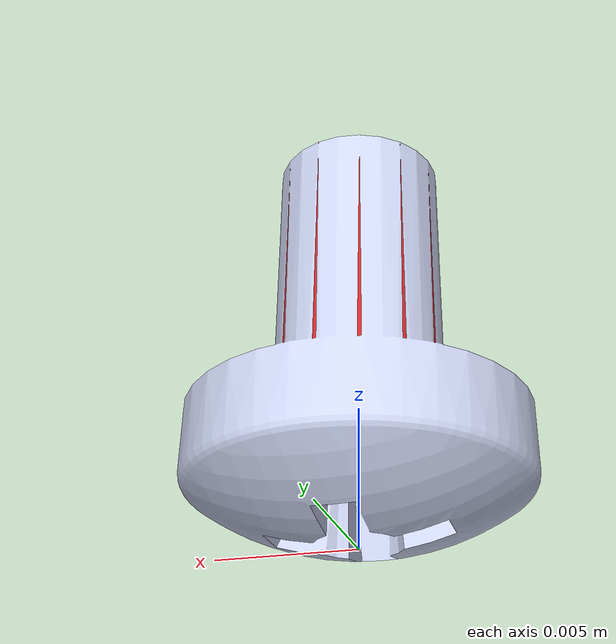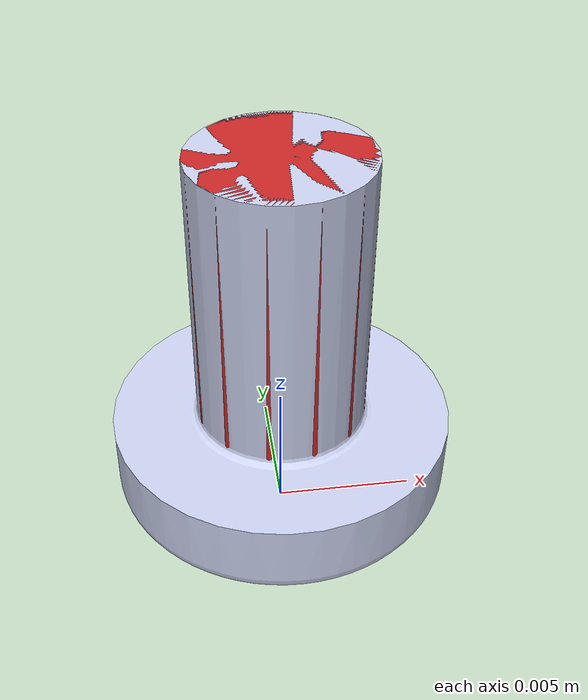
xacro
<?xml version="1.0"?>
<robot name="122925" xmlns:xacro="http://www.ros.org/wiki/xacro">
	<xacro:include filename="$(find object_description)/chair_urdf/122925.SLDPRT.urdf"/>
	<xacro:include filename="$(find object_description)/chair_xacro_re/for_assemble_macro.xacro"/>

	<xacro:property name="x_offset" value="0.0"/>
	<xacro:property name="y_offset" value="0.0"/>
	<xacro:property name="z_offset" value="0.0"/>

	<xacro:shaft_definition link_name="122925 shaft simplex 122620-1 1"
							length="0.01"
							radius="0.003"
							x="${0.0 + x_offset}" y="${0.0 + y_offset}" z="${0.0096 + z_offset}"
							rx="0" ry="0" rz="0"
							parent="122925.SLDPRT"/>

</robot>

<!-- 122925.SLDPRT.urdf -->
<robot
  name="122925.SLDPRT">
  <link
    name="122925.SLDPRT">
    <inertial>
      <origin
        xyz="-6.3758E-19 -2.3764E-19 0.00578"
        rpy="0 -1.5707963267949 0" />
      <mass
        value="0.00065266" />
      <inertia
        ixx="7.8857E-09"
        ixy="1.1443E-19"
        ixz="-1.1443E-19"
        iyy="1.4006E-08"
        iyz="-7.19799999999999E-14"
        izz="1.4007E-08" />
    </inertial>
    <visual>
      <origin
        xyz="0 0 0"
        rpy="0 -1.5707963267949 0" />
      <geometry>
        <mesh
          filename="package://object_description/chair_meshes/122925.SLDPRT.STL" />
      </geometry>
      <material
        name="">
        <color
          rgba="0.79216 0.81961 0.93333 1" />
        <texture
          filename="package://object_description/textures/" />
      </material>
    </visual>
    <collision>
      <origin
        xyz="0 0 0"
        rpy="0 -1.5707963267949 0" />
      <geometry>
        <mesh
          filename="package://object_description/chair_meshes/122925.SLDPRT.STL" />
      </geometry>
    </collision>
  </link>
	<gazebo reference="122925.SLDPRT">
    <material>Gazebo/Grey</material>
    <kp>100000.0</kp>
    <kd>1.0</kd>
    <mu1>100000</mu1>
    <mu2>100000</mu2>
    <maxVel>0</maxVel>
    <minDepth>0.000</minDepth>
  </gazebo>
</robot>

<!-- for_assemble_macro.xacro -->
<robot xmlns:xacro="http://wiki.ros.org/xacro">

	<xacro:macro name="hole_definition" params="link_name
												length radius
												x y z rx ry rz
												parent">
		<link name="${link_name}">
			<visual>
				<origin xyz="0 0 0" rpy="0 0 0"/>
				<geometry>
					<cylinder length="${length}" radius="${radius}"/>
				</geometry>
			</visual>
		</link>

		<joint name="${link_name} joint" type="fixed">
			<origin xyz="${x} ${y} ${z}" rpy="${rx} ${ry} ${rz}"/>
			<parent link="${parent}"/>
			<child link="${link_name}"/>
		</joint>

		<gazebo reference="${link_name}">
			<material>Gazebo/BlueTransparent</material>
		</gazebo>
	</xacro:macro>

	<xacro:macro name="shaft_definition" params="link_name
												length radius
												x y z rx ry rz
												parent">
		<link name="${link_name}">
			<visual>
				<origin xyz="0 0 0" rpy="0 0 0"/>
				<geometry>
					<cylinder length="${length}" radius="${radius}"/>
				</geometry>
			</visual>
		</link>

		<joint name="${link_name} joint" type="fixed">
			<origin xyz="${x} ${y} ${z}" rpy="${rx} ${ry} ${rz}"/>
			<parent link="${parent}"/>
			<child link="${link_name}"/>
		</joint>

		<gazebo reference="${link_name}">
			<material>Gazebo/RedTransparent</material>
		</gazebo>
	</xacro:macro>

	<xacro:macro name="surface_definition" params="link_name
												   box_x box_y box_z
												   x y z rx ry rz
												   parent">
		<link name="${link_name}">
			<visual>
				<origin xyz="0 0 0" rpy="0 0 0"/>
				<geometry>
					<box size="${box_x} ${box_y} ${box_z}"/>
				</geometry>
			</visual>
		</link>

		<joint name="${link_name} joint" type="fixed">
			<origin xyz="${x} ${y} ${z}" rpy="${rx} ${ry} ${rz}"/>
			<parent link="${parent}"/>
			<child link="${link_name}"/>
		</joint>

		<gazebo reference="${link_name}">
			<material>Gazebo/GreenTransparent</material>
		</gazebo>
	</xacro:macro>

</robot>
